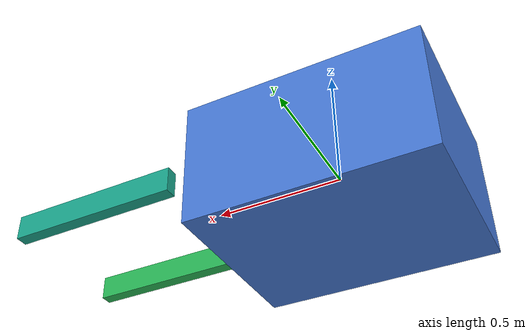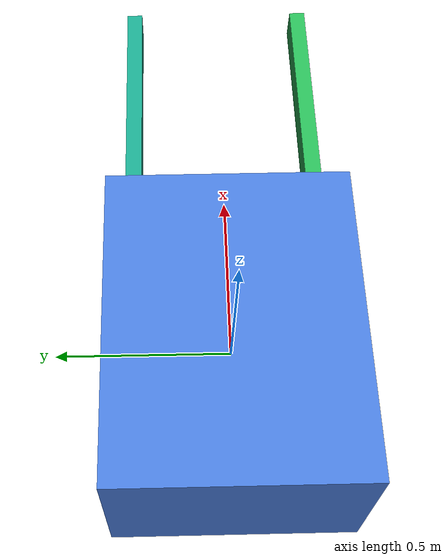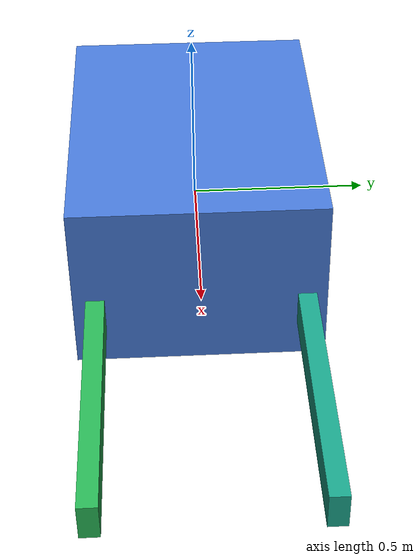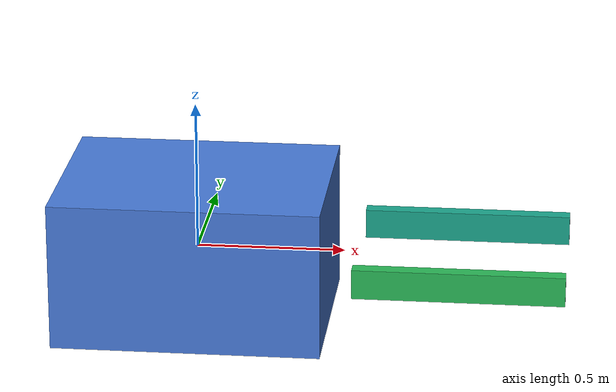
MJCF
<mujoco model="two_arm_free_drift">
  <compiler angle="radian"/>
  <option timestep="0.1" gravity="0 0 0">
    <flag contact="disable"/>
  </option>

  <default>
    <joint damping="0" armature="0" limited="false"/>
    <geom rgba="0.65 0.67 0.70 1"/>
  </default>

  <worldbody>
    <body name="hub" pos="0 0 0">
      <freejoint name="hub_free"/>
      <inertial pos="0 0 0" mass="120" diaginertia="8 10 12"/>
      <geom type="box" size="0.45 0.35 0.25" mass="0" rgba="0.28 0.48 0.85 1"/>

      <body name="arm_1" pos="0.55 0.28 0">
        <joint name="hinge_1" type="hinge" axis="0 1 0"/>
        <inertial pos="0.35 0 0" mass="8" diaginertia="0.04 0.42 0.42"/>
        <geom type="box" pos="0.35 0 0" size="0.35 0.025 0.05" mass="0"
              rgba="0.1 0.65 0.55 1"/>
      </body>

      <body name="arm_2" pos="0.55 -0.28 0">
        <joint name="hinge_2" type="hinge" axis="0 1 0"/>
        <inertial pos="0.35 0 0" mass="8" diaginertia="0.04 0.42 0.42"/>
        <geom type="box" pos="0.35 0 0" size="0.35 0.025 0.05" mass="0"
              rgba="0.16 0.72 0.34 1"/>
      </body>
    </body>
  </worldbody>
</mujoco>
